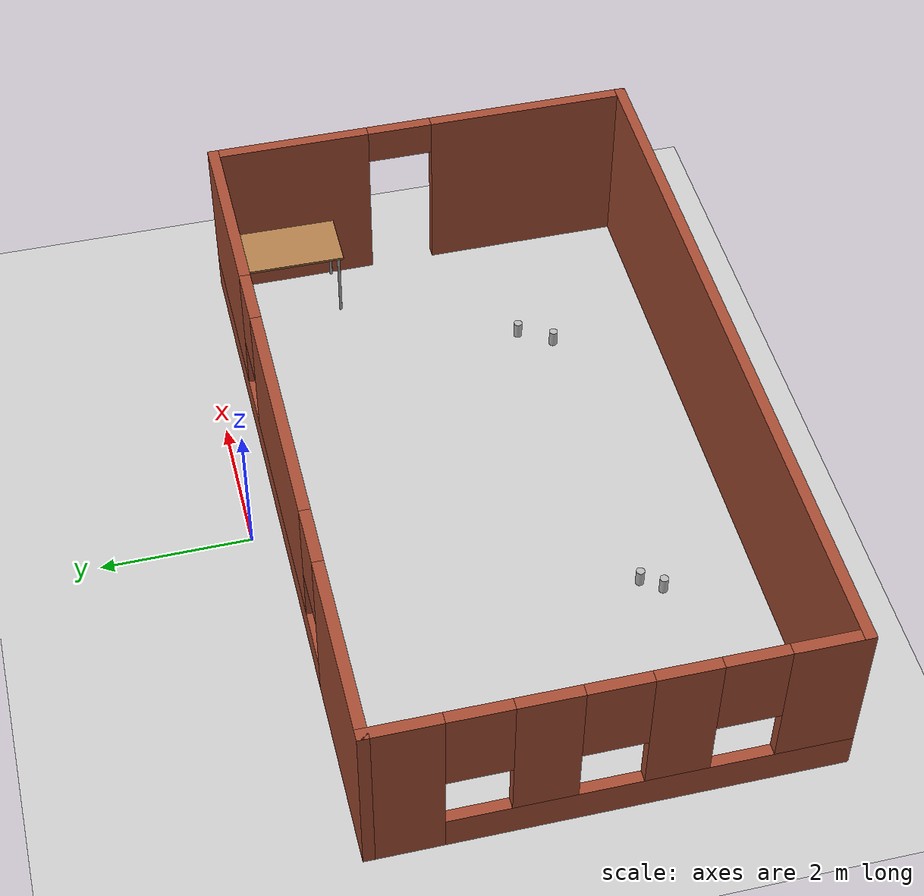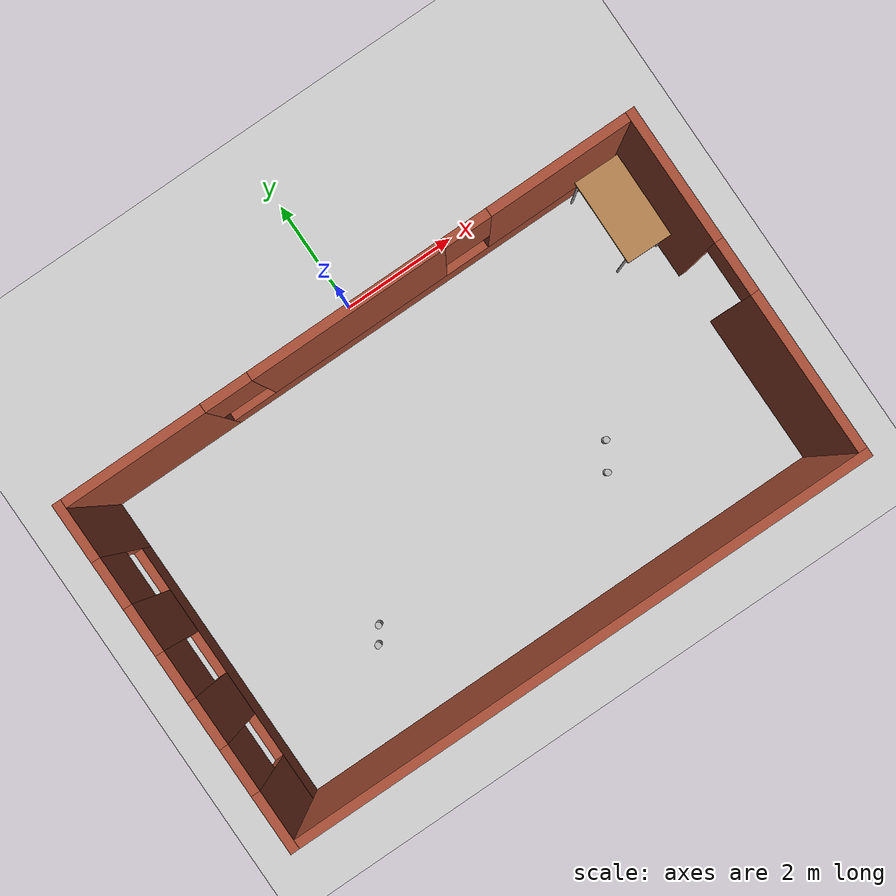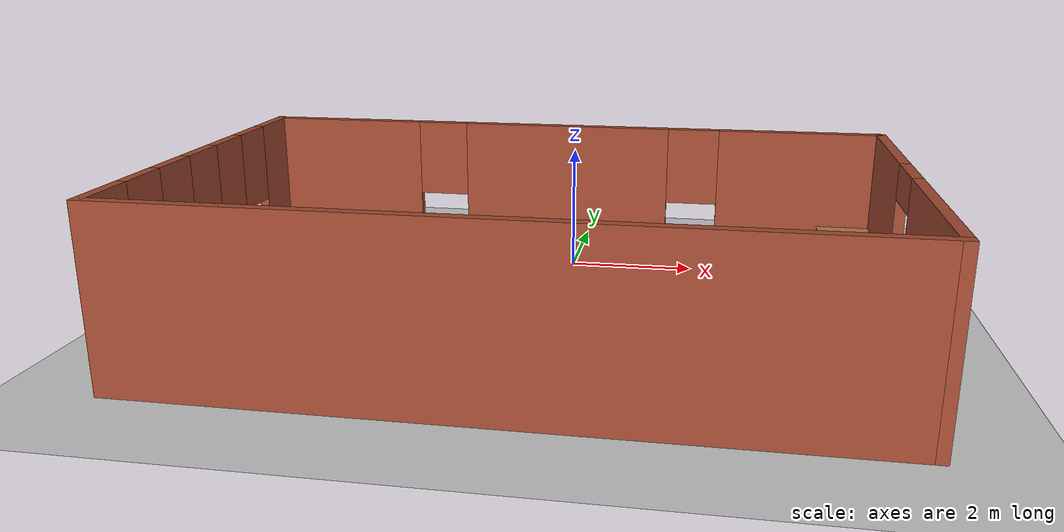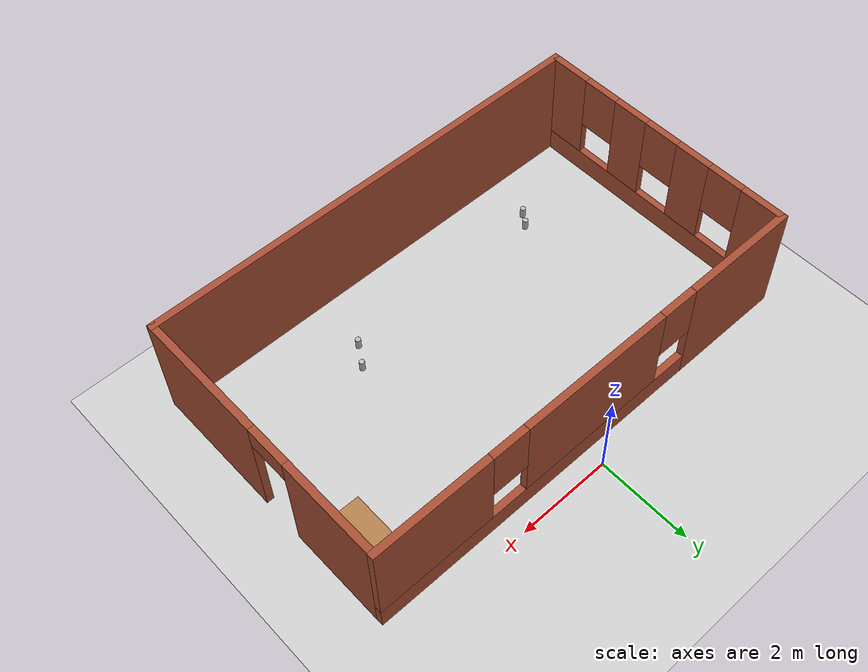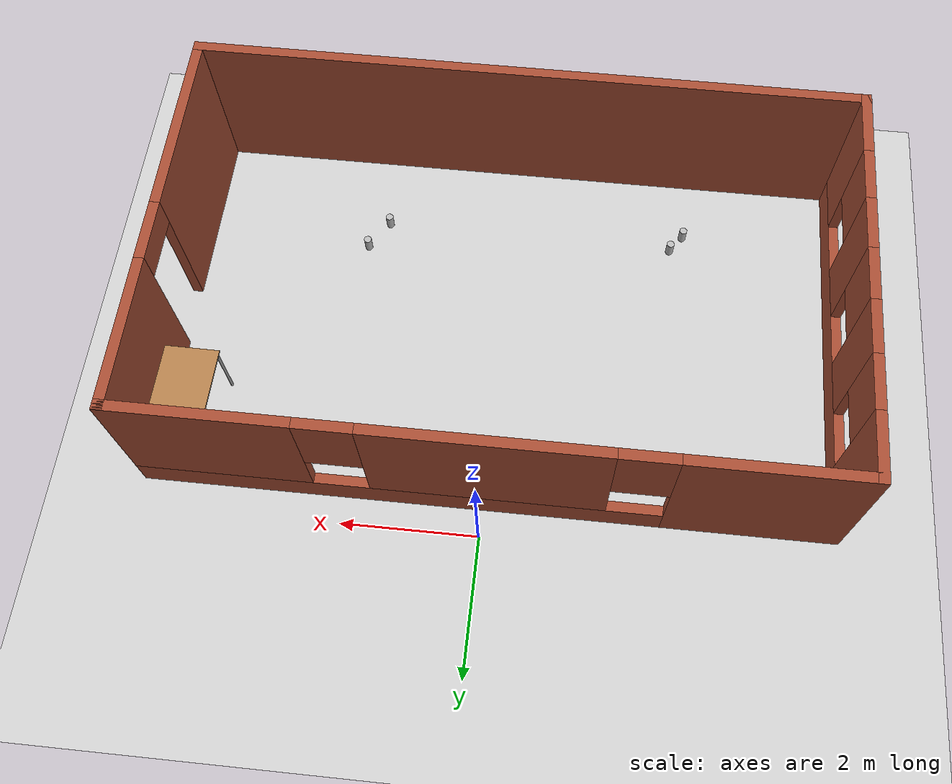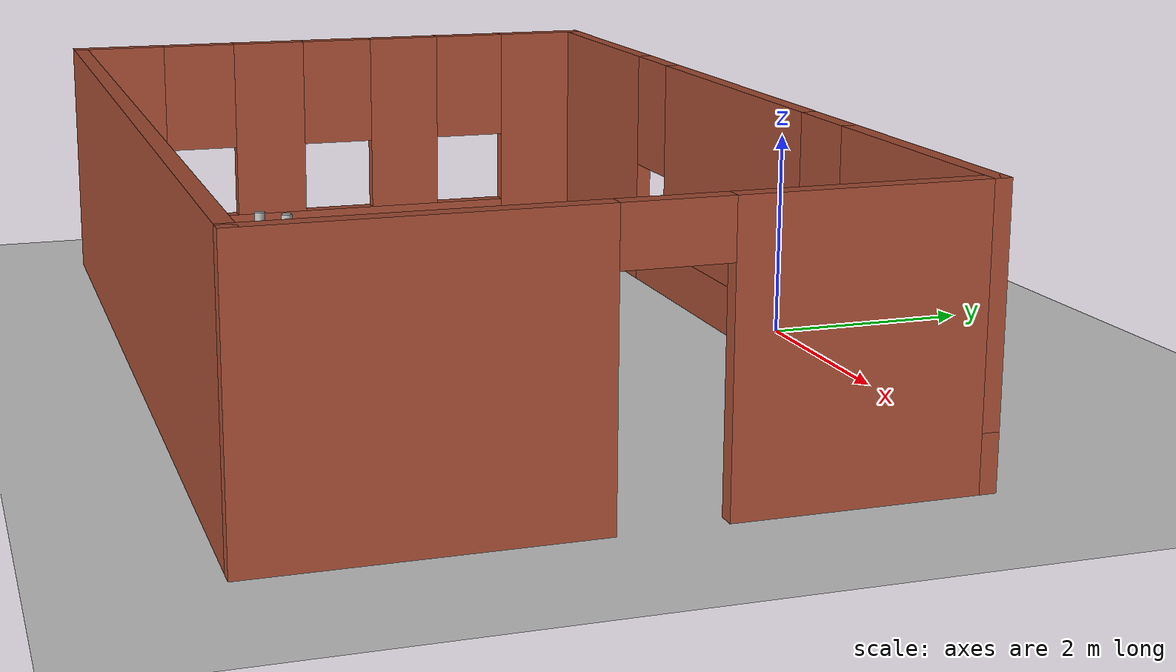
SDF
<sdf version="1.6">
 <world name="default">
  <light name="sun" type="directional">
   <pose>0 0 10 0 -0 0</pose>
   <diffuse>0.8 0.8 0.8 1</diffuse>
   <specular>0.2 0.2 0.2 1</specular>
   <attenuation>
    <range>1000</range>
    <constant>0.9</constant>
    <linear>0.01</linear>
    <quadratic>0.001</quadratic>
   </attenuation>
   <direction>-0.5 0.1 -0.9</direction>
  </light>
  <model name="ground_plane">
   <static>1</static>
   <link name="link">
    <collision name="collision">
     <geometry><plane><normal>0 0 1</normal><size>100 100</size></plane></geometry>
     <surface>
      <contact><collide_bitmask>65535</collide_bitmask></contact>
      <friction><ode><mu>100</mu><mu2>50</mu2></ode></friction>
     </surface>
    </collision>
    <visual name="visual">
     <cast_shadows>0</cast_shadows>
     <geometry><plane><normal>0 0 1</normal><size>100 100</size></plane></geometry>
     <material>
      <script><uri>file://media/materials/scripts/gazebo.material</uri><name>Gazebo/Grey</name></script>
     </material>
    </visual>
   </link>
  </model>
  <gravity>0 0 -9.8</gravity>
  <magnetic_field>6e-06 2.3e-05 -4.2e-05</magnetic_field>
  <atmosphere type="adiabatic"/>
  <physics name="default_physics" default="0" type="ode">
   <max_step_size>0.001</max_step_size>
   <real_time_factor>1</real_time_factor>
   <real_time_update_rate>1000</real_time_update_rate>
  </physics>
  <scene><ambient>0.4 0.4 0.4 1</ambient><background>0.7 0.7 0.7 1</background><shadows>1</shadows></scene>
  <audio><device>default</device></audio>
  <spherical_coordinates>
   <surface_model>EARTH_WGS84</surface_model>
   <latitude_deg>0</latitude_deg>
   <longitude_deg>0</longitude_deg>
   <elevation>0</elevation>
   <heading_deg>0</heading_deg>
  </spherical_coordinates>
  <model name="CoffeeShop-EP1">
   <pose>-0.08078 -3.40771 0 0 -0 0</pose>
   <link name="Wall_4">
    <pose>-4.925 0 0 0 -0 -1.5708</pose>
    <visual name="Wall_4_Visual_0">
     <pose>-2.50273 0 1.25 0 -0 0</pose>
     <geometry><box><size>0.994536 0.15 2.5</size></box></geometry>
     <material>
      <script><uri>file://media/materials/scripts/gazebo.material</uri><name>Gazebo/Bricks</name></script>
      <ambient>1 1 1 1</ambient>
     </material>
     <meta><layer>0</layer></meta>
    </visual>
    <collision name="Wall_4_Collision_0">
     <geometry><box><size>0.994536 0.15 2.5</size></box></geometry>
     <pose>-2.50273 0 1.25 0 -0 0</pose>
    </collision>
    <visual name="Wall_4_Visual_1">
     <pose>0.497268 0 0.25 0 -0 0</pose>
     <geometry><box><size>5.00546 0.15 0.5</size></box></geometry>
     <material>
      <script><uri>file://media/materials/scripts/gazebo.material</uri><name>Gazebo/Bricks</name></script>
      <ambient>1 1 1 1</ambient>
     </material>
     <meta><layer>0</layer></meta>
    </visual>
    <collision name="Wall_4_Collision_1">
     <geometry><box><size>5.00546 0.15 0.5</size></box></geometry>
     <pose>0.497268 0 0.25 0 -0 0</pose>
    </collision>
    <visual name="Wall_4_Visual_2">
     <pose>-0.803798 0 1.5 0 -0 0</pose>
     <geometry><box><size>0.803333 0.15 2</size></box></geometry>
     <material>
      <script><uri>file://media/materials/scripts/gazebo.material</uri><name>Gazebo/Bricks</name></script>
      <ambient>1 1 1 1</ambient>
     </material>
     <meta><layer>0</layer></meta>
    </visual>
    <collision name="Wall_4_Collision_2">
     <geometry><box><size>0.803333 0.15 2</size></box></geometry>
     <pose>-0.803798 0 1.5 0 -0 0</pose>
    </collision>
    <visual name="Wall_4_Visual_3">
     <pose>0.801059 0 1.5 0 -0 0</pose>
     <geometry><box><size>0.80638 0.15 2</size></box></geometry>
     <material>
      <script><uri>file://media/materials/scripts/gazebo.material</uri><name>Gazebo/Bricks</name></script>
      <ambient>1 1 1 1</ambient>
     </material>
     <meta><layer>0</layer></meta>
    </visual>
    <collision name="Wall_4_Collision_3">
     <geometry><box><size>0.80638 0.15 2</size></box></geometry>
     <pose>0.801059 0 1.5 0 -0 0</pose>
    </collision>
    <visual name="Wall_4_Visual_4">
     <pose>2.50212 0 1.5 0 -0 0</pose>
     <geometry><box><size>0.995751 0.15 2</size></box></geometry>
     <material>
      <script><uri>file://media/materials/scripts/gazebo.material</uri><name>Gazebo/Bricks</name></script>
      <ambient>1 1 1 1</ambient>
     </material>
     <meta><layer>0</layer></meta>
    </visual>
    <collision name="Wall_4_Collision_4">
     <geometry><box><size>0.995751 0.15 2</size></box></geometry>
     <pose>2.50212 0 1.5 0 -0 0</pose>
    </collision>
    <visual name="Wall_4_Visual_5">
     <pose>-1.60546 0 1.9 0 -0 0</pose>
     <geometry><box><size>0.8 0.15 1.2</size></box></geometry>
     <material>
      <script><uri>file://media/materials/scripts/gazebo.material</uri><name>Gazebo/Bricks</name></script>
      <ambient>1 1 1 1</ambient>
     </material>
     <meta><layer>0</layer></meta>
    </visual>
    <collision name="Wall_4_Collision_5">
     <geometry><box><size>0.8 0.15 1.2</size></box></geometry>
     <pose>-1.60546 0 1.9 0 -0 0</pose>
    </collision>
    <visual name="Wall_4_Visual_6">
     <pose>-0.002131 0 1.9 0 -0 0</pose>
     <geometry><box><size>0.8 0.15 1.2</size></box></geometry>
     <material>
      <script><uri>file://media/materials/scripts/gazebo.material</uri><name>Gazebo/Bricks</name></script>
      <ambient>1 1 1 1</ambient>
     </material>
     <meta><layer>0</layer></meta>
    </visual>
    <collision name="Wall_4_Collision_6">
     <geometry><box><size>0.8 0.15 1.2</size></box></geometry>
     <pose>-0.002131 0 1.9 0 -0 0</pose>
    </collision>
    <visual name="Wall_4_Visual_7">
     <pose>1.60425 0 1.9 0 -0 0</pose>
     <geometry><box><size>0.8 0.15 1.2</size></box></geometry>
     <material>
      <script><uri>file://media/materials/scripts/gazebo.material</uri><name>Gazebo/Bricks</name></script>
      <ambient>1 1 1 1</ambient>
     </material>
     <meta><layer>0</layer></meta>
    </visual>
    <collision name="Wall_4_Collision_7">
     <geometry><box><size>0.8 0.15 1.2</size></box></geometry>
     <pose>1.60425 0 1.9 0 -0 0</pose>
    </collision>
   </link>
   <link name="Wall_5">
    <collision name="Wall_5_Collision">
     <geometry><box><size>10 0.15 2.5</size></box></geometry>
     <pose>0 0 1.25 0 -0 0</pose>
    </collision>
    <visual name="Wall_5_Visual">
     <pose>0 0 1.25 0 -0 0</pose>
     <geometry><box><size>10 0.15 2.5</size></box></geometry>
     <material>
      <script><uri>file://media/materials/scripts/gazebo.material</uri><name>Gazebo/Bricks</name></script>
      <ambient>1 1 1 1</ambient>
     </material>
     <meta><layer>0</layer></meta>
    </visual>
    <pose>0 -2.925 0 0 -0 0</pose>
   </link>
   <link name="Wall_6">
    <pose>4.925 0 0 0 -0 1.5708</pose>
    <visual name="Wall_6_Visual_0">
     <pose>-1.5708 0 1.25 0 -0 0</pose>
     <geometry><box><size>2.85841 0.15 2.5</size></box></geometry>
     <material>
      <script><uri>file://media/materials/scripts/gazebo.material</uri><name>Gazebo/Bricks</name></script>
      <ambient>1 1 1 1</ambient>
     </material>
     <meta><layer>0</layer></meta>
    </visual>
    <collision name="Wall_6_Collision_0">
     <geometry><box><size>2.85841 0.15 2.5</size></box></geometry>
     <pose>-1.5708 0 1.25 0 -0 0</pose>
    </collision>
    <visual name="Wall_6_Visual_1">
     <pose>1.8792 0 1.25 0 -0 0</pose>
     <geometry><box><size>2.24159 0.15 2.5</size></box></geometry>
     <material>
      <script><uri>file://media/materials/scripts/gazebo.material</uri><name>Gazebo/Bricks</name></script>
      <ambient>1 1 1 1</ambient>
     </material>
     <meta><layer>0</layer></meta>
    </visual>
    <collision name="Wall_6_Collision_1">
     <geometry><box><size>2.24159 0.15 2.5</size></box></geometry>
     <pose>1.8792 0 1.25 0 -0 0</pose>
    </collision>
    <visual name="Wall_6_Visual_2">
     <pose>0.308408 0 2.25 0 -0 0</pose>
     <geometry><box><size>0.9 0.15 0.5</size></box></geometry>
     <material>
      <script><uri>file://media/materials/scripts/gazebo.material</uri><name>Gazebo/Bricks</name></script>
      <ambient>1 1 1 1</ambient>
     </material>
     <meta><layer>0</layer></meta>
    </visual>
    <collision name="Wall_6_Collision_2">
     <geometry><box><size>0.9 0.15 0.5</size></box></geometry>
     <pose>0.308408 0 2.25 0 -0 0</pose>
    </collision>
   </link>
   <link name="Wall_8">
    <pose>0 2.925 0 0 -0 0</pose>
    <visual name="Wall_8_Visual_0">
     <pose>-3.72931 0 1.25 0 -0 0</pose>
     <geometry><box><size>2.54138 0.15 2.5</size></box></geometry>
     <material>
      <script><uri>file://media/materials/scripts/gazebo.material</uri><name>Gazebo/Bricks</name></script>
      <ambient>1 1 1 1</ambient>
     </material>
     <meta><layer>0</layer></meta>
    </visual>
    <collision name="Wall_8_Collision_0">
     <geometry><box><size>2.54138 0.15 2.5</size></box></geometry>
     <pose>-3.72931 0 1.25 0 -0 0</pose>
    </collision>
    <visual name="Wall_8_Visual_1">
     <pose>1.27069 0 0.25 0 -0 0</pose>
     <geometry><box><size>7.45862 0.15 0.5</size></box></geometry>
     <material>
      <script><uri>file://media/materials/scripts/gazebo.material</uri><name>Gazebo/Bricks</name></script>
      <ambient>1 1 1 1</ambient>
     </material>
     <meta><layer>0</layer></meta>
    </visual>
    <collision name="Wall_8_Collision_1">
     <geometry><box><size>7.45862 0.15 0.5</size></box></geometry>
     <pose>1.27069 0 0.25 0 -0 0</pose>
    </collision>
    <visual name="Wall_8_Visual_2">
     <pose>-0.002128 0 1.5 0 -0 0</pose>
     <geometry><box><size>3.31297 0.15 2</size></box></geometry>
     <material>
      <script><uri>file://media/materials/scripts/gazebo.material</uri><name>Gazebo/Bricks</name></script>
      <ambient>1 1 1 1</ambient>
     </material>
     <meta><layer>0</layer></meta>
    </visual>
    <collision name="Wall_8_Collision_2">
     <geometry><box><size>3.31297 0.15 2</size></box></geometry>
     <pose>-0.002128 0 1.5 0 -0 0</pose>
    </collision>
    <visual name="Wall_8_Visual_3">
     <pose>3.72718 0 1.5 0 -0 0</pose>
     <geometry><box><size>2.54564 0.15 2</size></box></geometry>
     <material>
      <script><uri>file://media/materials/scripts/gazebo.material</uri><name>Gazebo/Bricks</name></script>
      <ambient>1 1 1 1</ambient>
     </material>
     <meta><layer>0</layer></meta>
    </visual>
    <collision name="Wall_8_Collision_3">
     <geometry><box><size>2.54564 0.15 2</size></box></geometry>
     <pose>3.72718 0 1.5 0 -0 0</pose>
    </collision>
    <visual name="Wall_8_Visual_4">
     <pose>-2.05862 0 1.9 0 -0 0</pose>
     <geometry><box><size>0.8 0.15 1.2</size></box></geometry>
     <material>
      <script><uri>file://media/materials/scripts/gazebo.material</uri><name>Gazebo/Bricks</name></script>
      <ambient>1 1 1 1</ambient>
     </material>
     <meta><layer>0</layer></meta>
    </visual>
    <collision name="Wall_8_Collision_4">
     <geometry><box><size>0.8 0.15 1.2</size></box></geometry>
     <pose>-2.05862 0 1.9 0 -0 0</pose>
    </collision>
    <visual name="Wall_8_Visual_5">
     <pose>2.05436 0 1.9 0 -0 0</pose>
     <geometry><box><size>0.8 0.15 1.2</size></box></geometry>
     <material>
      <script><uri>file://media/materials/scripts/gazebo.material</uri><name>Gazebo/Bricks</name></script>
      <ambient>1 1 1 1</ambient>
     </material>
     <meta><layer>0</layer></meta>
    </visual>
    <collision name="Wall_8_Collision_5">
     <geometry><box><size>0.8 0.15 1.2</size></box></geometry>
     <pose>2.05436 0 1.9 0 -0 0</pose>
    </collision>
   </link>
   <static>1</static>
  </model>
  <model name="table">
   <static>1</static>
   <link name="link">
    <collision name="surface">
     <pose>0 0 1 0 -0 0</pose>
     <geometry><box><size>1.5 0.8 0.03</size></box></geometry>
     <surface><friction><ode><mu>0.6</mu><mu2>0.6</mu2></ode></friction></surface>
    </collision>
    <visual name="visual1">
     <pose>0 0 1 0 -0 0</pose>
     <geometry><box><size>1.5 0.8 0.03</size></box></geometry>
     <material>
      <script><uri>file://media/materials/scripts/gazebo.material</uri><name>Gazebo/Wood</name></script>
     </material>
    </visual>
    <collision name="front_left_leg">
     <pose>0.68 0.38 0.5 0 -0 0</pose>
     <geometry><cylinder><radius>0.02</radius><length>1</length></cylinder></geometry>
    </collision>
    <visual name="front_left_leg">
     <pose>0.68 0.38 0.5 0 -0 0</pose>
     <geometry><cylinder><radius>0.02</radius><length>1</length></cylinder></geometry>
     <material>
      <script><uri>file://media/materials/scripts/gazebo.material</uri><name>Gazebo/Grey</name></script>
     </material>
    </visual>
    <collision name="front_right_leg">
     <pose>0.68 -0.38 0.5 0 -0 0</pose>
     <geometry><cylinder><radius>0.02</radius><length>1</length></cylinder></geometry>
    </collision>
    <visual name="front_right_leg">
     <pose>0.68 -0.38 0.5 0 -0 0</pose>
     <geometry><cylinder><radius>0.02</radius><length>1</length></cylinder></geometry>
     <material>
      <script><uri>file://media/materials/scripts/gazebo.material</uri><name>Gazebo/Grey</name></script>
     </material>
    </visual>
    <collision name="back_right_leg">
     <pose>-0.68 -0.38 0.5 0 -0 0</pose>
     <geometry><cylinder><radius>0.02</radius><length>1</length></cylinder></geometry>
    </collision>
    <visual name="back_right_leg">
     <pose>-0.68 -0.38 0.5 0 -0 0</pose>
     <geometry><cylinder><radius>0.02</radius><length>1</length></cylinder></geometry>
     <material>
      <script><uri>file://media/materials/scripts/gazebo.material</uri><name>Gazebo/Grey</name></script>
     </material>
    </visual>
    <collision name="back_left_leg">
     <pose>-0.68 0.38 0.5 0 -0 0</pose>
     <geometry><cylinder><radius>0.02</radius><length>1</length></cylinder></geometry>
    </collision>
    <visual name="back_left_leg">
     <pose>-0.68 0.38 0.5 0 -0 0</pose>
     <geometry><cylinder><radius>0.02</radius><length>1</length></cylinder></geometry>
     <material>
      <script><uri>file://media/materials/scripts/gazebo.material</uri><name>Gazebo/Grey</name></script>
     </material>
    </visual>
   </link>
   <pose>4.36506 -1.33065 0 0 -0 1.56055</pose>
  </model>
  <model name="beer_3">
   <link name="link">
    <pose>0 0 0.115 0 -0 0</pose>
    <inertial>
     <mass>0.39</mass>
     <inertia><ixx>0.00058</ixx><ixy>0</ixy><ixz>0</ixz><iyy>0.00058</iyy><iyz>0</iyz><izz>0.00019</izz></inertia>
    </inertial>
    <collision name="collision">
     <geometry><cylinder><radius>0.055</radius><length>0.23</length></cylinder></geometry>
    </collision>
    <visual name="visual">
     <geometry><cylinder><radius>0.055</radius><length>0.23</length></cylinder></geometry>
     <material>
      <script>
       <uri>model://beer/materials/scripts</uri>
       <uri>model://beer/materials/textures</uri>
       <name>Beer/Diffuse</name>
      </script>
     </material>
    </visual>
   </link>
   <pose>-2.42855 -4.52661 0.775001 -0 2.7e-05 0.001572</pose>
  </model>
  <model name="beer_4">
   <link name="link">
    <pose>0 0 0.115 0 -0 0</pose>
    <inertial>
     <mass>0.39</mass>
     <inertia><ixx>0.00058</ixx><ixy>0</ixy><ixz>0</ixz><iyy>0.00058</iyy><iyz>0</iyz><izz>0.00019</izz></inertia>
    </inertial>
    <collision name="collision">
     <geometry><cylinder><radius>0.055</radius><length>0.23</length></cylinder></geometry>
    </collision>
    <visual name="visual">
     <geometry><cylinder><radius>0.055</radius><length>0.23</length></cylinder></geometry>
     <material>
      <script>
       <uri>model://beer/materials/scripts</uri>
       <uri>model://beer/materials/textures</uri>
       <name>Beer/Diffuse</name>
      </script>
     </material>
    </visual>
   </link>
   <pose>-2.61046 -4.77969 0.774993 5.2e-05 2e-06 0.007314</pose>
  </model>
  <model name="beer_5">
   <link name="link">
    <pose>0 0 0.115 0 -0 0</pose>
    <inertial>
     <mass>0.39</mass>
     <inertia><ixx>0.00058</ixx><ixy>0</ixy><ixz>0</ixz><iyy>0.00058</iyy><iyz>0</iyz><izz>0.00019</izz></inertia>
    </inertial>
    <collision name="collision">
     <geometry><cylinder><radius>0.055</radius><length>0.23</length></cylinder></geometry>
    </collision>
    <visual name="visual">
     <geometry><cylinder><radius>0.055</radius><length>0.23</length></cylinder></geometry>
     <material>
      <script>
       <uri>model://beer/materials/scripts</uri>
       <uri>model://beer/materials/textures</uri>
       <name>Beer/Diffuse</name>
      </script>
     </material>
    </visual>
   </link>
   <pose>1.85772 -4.58027 0.780825 6e-06 2.5e-05 0.000224</pose>
  </model>
  <model name="beer_6">
   <link name="link">
    <pose>0 0 0.115 0 -0 0</pose>
    <inertial>
     <mass>0.39</mass>
     <inertia><ixx>0.00058</ixx><ixy>0</ixy><ixz>0</ixz><iyy>0.00058</iyy><iyz>0</iyz><izz>0.00019</izz></inertia>
    </inertial>
    <collision name="collision">
     <geometry><cylinder><radius>0.055</radius><length>0.23</length></cylinder></geometry>
    </collision>
    <visual name="visual">
     <geometry><cylinder><radius>0.055</radius><length>0.23</length></cylinder></geometry>
     <material>
      <script>
       <uri>model://beer/materials/scripts</uri>
       <uri>model://beer/materials/textures</uri>
       <name>Beer/Diffuse</name>
      </script>
     </material>
    </visual>
   </link>
   <pose>2.12685 -4.15012 0.780826 5.9e-05 1e-06 0.000511</pose>
  </model>
 </world>
</sdf>
